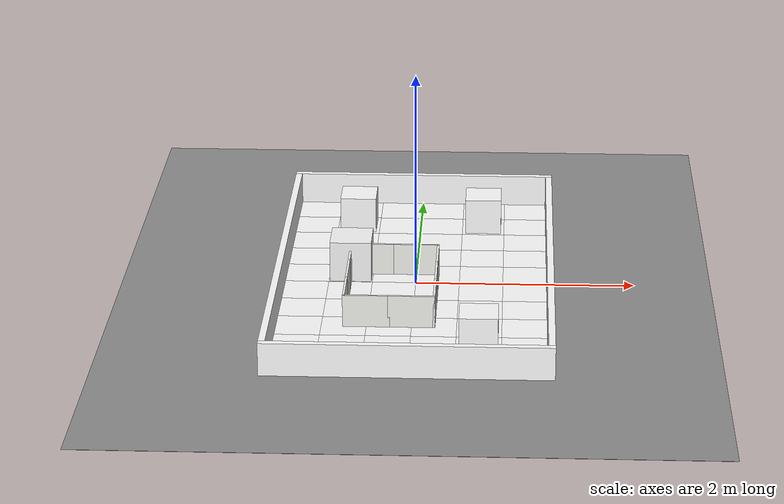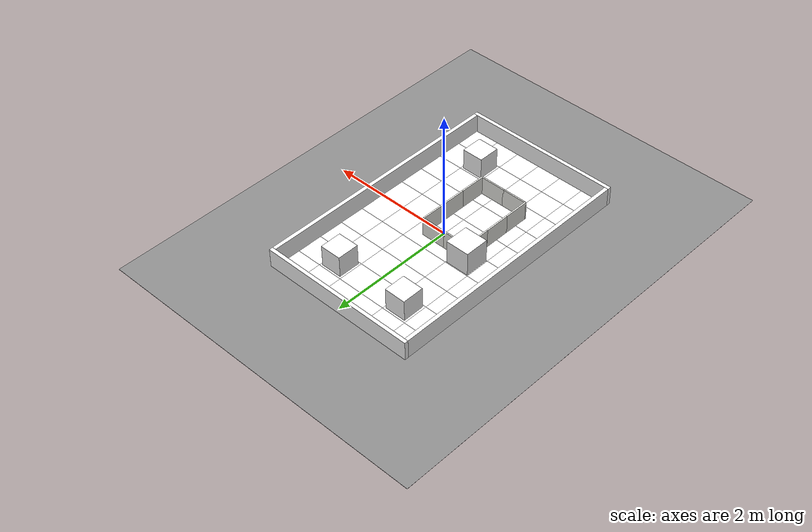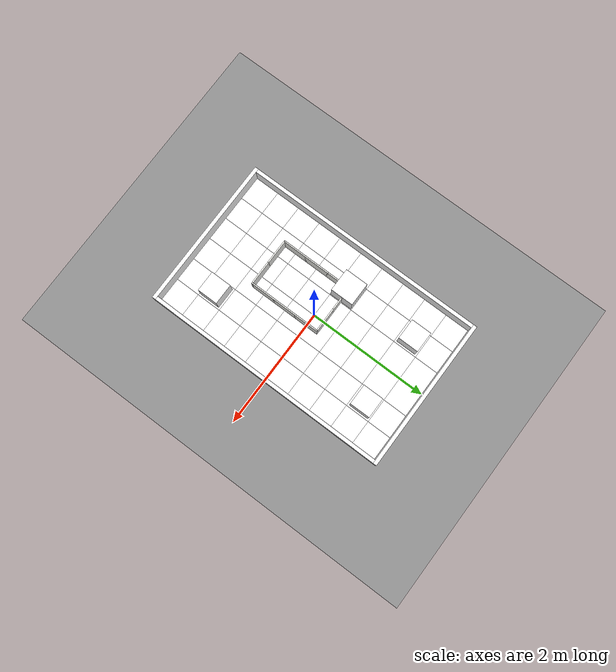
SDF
<?xml version="1.0" ?>
<!-- Generated by generate_grid_world.py from maps/udc_fig3.txt -->
<sdf version="1.9">
  <world name="default">
    <plugin filename="gz-sim-physics-system" name="gz::sim::systems::Physics"/>
    <plugin filename="gz-sim-user-commands-system" name="gz::sim::systems::UserCommands"/>
    <plugin filename="gz-sim-scene-broadcaster-system" name="gz::sim::systems::SceneBroadcaster"/>
    <plugin filename="gz-sim-sensors-system" name="gz::sim::systems::Sensors">
      <render_engine>ogre2</render_engine>
    </plugin>

    <scene>
      <ambient>0.6 0.6 0.6 1</ambient>
      <background>0.8 0.8 0.8 1</background>
      <grid>false</grid>
    </scene>

    <light type="directional" name="sun">
      <cast_shadows>false</cast_shadows>
      <pose>0 0 10 0 0 0</pose>
      <diffuse>0.9 0.9 0.9 1</diffuse>
      <specular>0.2 0.2 0.2 1</specular>
      <direction>-0.3 0.2 -1</direction>
    </light>

    <light type="directional" name="fill">
      <cast_shadows>false</cast_shadows>
      <pose>0 0 10 0 0 0</pose>
      <diffuse>0.45 0.45 0.45 1</diffuse>
      <specular>0 0 0 1</specular>
      <direction>0.6 -0.7 -0.5</direction>
    </light>

    <model name="grid_floor"><static>true</static><link name="link"><visual name="tile_0_0_visual"><pose>-1.0000 1.8000 0.0010 0 0 0</pose><geometry><box><size>0.4000 0.4000 0.0020</size></box></geometry><material><ambient>1 1 1 1</ambient><diffuse>1 1 1 1</diffuse><pbr><metal><albedo_map>model://grid_world_assets/materials/textures/wood_dark.png</albedo_map><roughness>0.85</roughness><metalness>0</metalness></metal></pbr></material></visual><visual name="tile_0_1_visual"><pose>-0.6000 1.8000 0.0010 0 0 0</pose><geometry><box><size>0.4000 0.4000 0.0020</size></box></geometry><material><ambient>1 1 1 1</ambient><diffuse>1 1 1 1</diffuse><pbr><metal><albedo_map>model://grid_world_assets/materials/textures/wood_light.png</albedo_map><roughness>0.85</roughness><metalness>0</metalness></metal></pbr></material></visual><visual name="tile_0_2_visual"><pose>-0.2000 1.8000 0.0010 0 0 0</pose><geometry><box><size>0.4000 0.4000 0.0020</size></box></geometry><material><ambient>1 1 1 1</ambient><diffuse>1 1 1 1</diffuse><pbr><metal><albedo_map>model://grid_world_assets/materials/textures/wood_dark.png</albedo_map><roughness>0.85</roughness><metalness>0</metalness></metal></pbr></material></visual><visual name="tile_0_3_visual"><pose>0.2000 1.8000 0.0010 0 0 0</pose><geometry><box><size>0.4000 0.4000 0.0020</size></box></geometry><material><ambient>1 1 1 1</ambient><diffuse>1 1 1 1</diffuse><pbr><metal><albedo_map>model://grid_world_assets/materials/textures/wood_light.png</albedo_map><roughness>0.85</roughness><metalness>0</metalness></metal></pbr></material></visual><visual name="tile_0_4_visual"><pose>0.6000 1.8000 0.0010 0 0 0</pose><geometry><box><size>0.4000 0.4000 0.0020</size></box></geometry><material><ambient>1 1 1 1</ambient><diffuse>1 1 1 1</diffuse><pbr><metal><albedo_map>model://grid_world_assets/materials/textures/wood_dark.png</albedo_map><roughness>0.85</roughness><metalness>0</metalness></metal></pbr></material></visual><visual name="tile_0_5_visual"><pose>1.0000 1.8000 0.0010 0 0 0</pose><geometry><box><size>0.4000 0.4000 0.0020</size></box></geometry><material><ambient>1 1 1 1</ambient><diffuse>1 1 1 1</diffuse><pbr><metal><albedo_map>model://grid_world_assets/materials/textures/wood_light.png</albedo_map><roughness>0.85</roughness><metalness>0</metalness></metal></pbr></material></visual><visual name="tile_1_0_visual"><pose>-1.0000 1.4000 0.0010 0 0 0</pose><geometry><box><size>0.4000 0.4000 0.0020</size></box></geometry><material><ambient>1 1 1 1</ambient><diffuse>1 1 1 1</diffuse><pbr><metal><albedo_map>model://grid_world_assets/materials/textures/wood_light.png</albedo_map><roughness>0.85</roughness><metalness>0</metalness></metal></pbr></material></visual><visual name="tile_1_1_visual"><pose>-0.6000 1.4000 0.0010 0 0 0</pose><geometry><box><size>0.4000 0.4000 0.0020</size></box></geometry><material><ambient>1 1 1 1</ambient><diffuse>1 1 1 1</diffuse><pbr><metal><albedo_map>model://grid_world_assets/materials/textures/wood_dark.png</albedo_map><roughness>0.85</roughness><metalness>0</metalness></metal></pbr></material></visual><visual name="tile_1_2_visual"><pose>-0.2000 1.4000 0.0010 0 0 0</pose><geometry><box><size>0.4000 0.4000 0.0020</size></box></geometry><material><ambient>1 1 1 1</ambient><diffuse>1 1 1 1</diffuse><pbr><metal><albedo_map>model://grid_world_assets/materials/textures/wood_light.png</albedo_map><roughness>0.85</roughness><metalness>0</metalness></metal></pbr></material></visual><visual name="tile_1_3_visual"><pose>0.2000 1.4000 0.0010 0 0 0</pose><geometry><box><size>0.4000 0.4000 0.0020</size></box></geometry><material><ambient>1 1 1 1</ambient><diffuse>1 1 1 1</diffuse><pbr><metal><albedo_map>model://grid_world_assets/materials/textures/wood_dark.png</albedo_map><roughness>0.85</roughness><metalness>0</metalness></metal></pbr></material></visual><visual name="tile_1_4_visual"><pose>0.6000 1.4000 0.0010 0 0 0</pose><geometry><box><size>0.4000 0.4000 0.0020</size></box></geometry><material><ambient>1 1 1 1</ambient><diffuse>1 1 1 1</diffuse><pbr><metal><albedo_map>model://grid_world_assets/materials/textures/wood_light.png</albedo_map><roughness>0.85</roughness><metalness>0</metalness></metal></pbr></material></visual><visual name="tile_1_5_visual"><pose>1.0000 1.4000 0.0010 0 0 0</pose><geometry><box><size>0.4000 0.4000 0.0020</size></box></geometry><material><ambient>1 1 1 1</ambient><diffuse>1 1 1 1</diffuse><pbr><metal><albedo_map>model://grid_world_assets/materials/textures/wood_dark.png</albedo_map><roughness>0.85</roughness><metalness>0</metalness></metal></pbr></material></visual><visual name="tile_2_0_visual"><pose>-1.0000 1.0000 0.0010 0 0 0</pose><geometry><box><size>0.4000 0.4000 0.0020</size></box></geometry><material><ambient>1 1 1 1</ambient><diffuse>1 1 1 1</diffuse><pbr><metal><albedo_map>model://grid_world_assets/materials/textures/wood_dark.png</albedo_map><roughness>0.85</roughness><metalness>0</metalness></metal></pbr></material></visual><visual name="tile_2_1_visual"><pose>-0.6000 1.0000 0.0010 0 0 0</pose><geometry><box><size>0.4000 0.4000 0.0020</size></box></geometry><material><ambient>1 1 1 1</ambient><diffuse>1 1 1 1</diffuse><pbr><metal><albedo_map>model://grid_world_assets/materials/textures/wood_light.png</albedo_map><roughness>0.85</roughness><metalness>0</metalness></metal></pbr></material></visual><visual name="tile_2_2_visual"><pose>-0.2000 1.0000 0.0010 0 0 0</pose><geometry><box><size>0.4000 0.4000 0.0020</size></box></geometry><material><ambient>1 1 1 1</ambient><diffuse>1 1 1 1</diffuse><pbr><metal><albedo_map>model://grid_world_assets/materials/textures/wood_dark.png</albedo_map><roughness>0.85</roughness><metalness>0</metalness></metal></pbr></material></visual><visual name="tile_2_3_visual"><pose>0.2000 1.0000 0.0010 0 0 0</pose><geometry><box><size>0.4000 0.4000 0.0020</size></box></geometry><material><ambient>1 1 1 1</ambient><diffuse>1 1 1 1</diffuse><pbr><metal><albedo_map>model://grid_world_assets/materials/textures/wood_light.png</albedo_map><roughness>0.85</roughness><metalness>0</metalness></metal></pbr></material></visual><visual name="tile_2_4_visual"><pose>0.6000 1.0000 0.0010 0 0 0</pose><geometry><box><size>0.4000 0.4000 0.0020</size></box></geometry><material><ambient>1 1 1 1</ambient><diffuse>1 1 1 1</diffuse><pbr><metal><albedo_map>model://grid_world_assets/materials/textures/wood_dark.png</albedo_map><roughness>0.85</roughness><metalness>0</metalness></metal></pbr></material></visual><visual name="tile_2_5_visual"><pose>1.0000 1.0000 0.0010 0 0 0</pose><geometry><box><size>0.4000 0.4000 0.0020</size></box></geometry><material><ambient>1 1 1 1</ambient><diffuse>1 1 1 1</diffuse><pbr><metal><albedo_map>model://grid_world_assets/materials/textures/wood_light.png</albedo_map><roughness>0.85</roughness><metalness>0</metalness></metal></pbr></material></visual><visual name="tile_3_0_visual"><pose>-1.0000 0.6000 0.0010 0 0 0</pose><geometry><box><size>0.4000 0.4000 0.0020</size></box></geometry><material><ambient>1 1 1 1</ambient><diffuse>1 1 1 1</diffuse><pbr><metal><albedo_map>model://grid_world_assets/materials/textures/wood_light.png</albedo_map><roughness>0.85</roughness><metalness>0</metalness></metal></pbr></material></visual><visual name="tile_3_1_visual"><pose>-0.6000 0.6000 0.0010 0 0 0</pose><geometry><box><size>0.4000 0.4000 0.0020</size></box></geometry><material><ambient>1 1 1 1</ambient><diffuse>1 1 1 1</diffuse><pbr><metal><albedo_map>model://grid_world_assets/materials/textures/wood_dark.png</albedo_map><roughness>0.85</roughness><metalness>0</metalness></metal></pbr></material></visual><visual name="tile_3_2_visual"><pose>-0.2000 0.6000 0.0010 0 0 0</pose><geometry><box><size>0.4000 0.4000 0.0020</size></box></geometry><material><ambient>1 1 1 1</ambient><diffuse>1 1 1 1</diffuse><pbr><metal><albedo_map>model://grid_world_assets/materials/textures/wood_light.png</albedo_map><roughness>0.85</roughness><metalness>0</metalness></metal></pbr></material></visual><visual name="tile_3_3_visual"><pose>0.2000 0.6000 0.0010 0 0 0</pose><geometry><box><size>0.4000 0.4000 0.0020</size></box></geometry><material><ambient>1 1 1 1</ambient><diffuse>1 1 1 1</diffuse><pbr><metal><albedo_map>model://grid_world_assets/materials/textures/wood_dark.png</albedo_map><roughness>0.85</roughness><metalness>0</metalness></metal></pbr></material></visual><visual name="tile_3_4_visual"><pose>0.6000 0.6000 0.0010 0 0 0</pose><geometry><box><size>0.4000 0.4000 0.0020</size></box></geometry><material><ambient>1 1 1 1</ambient><diffuse>1 1 1 1</diffuse><pbr><metal><albedo_map>model://grid_world_assets/materials/textures/wood_light.png</albedo_map><roughness>0.85</roughness><metalness>0</metalness></metal></pbr></material></visual><visual name="tile_3_5_visual"><pose>1.0000 0.6000 0.0010 0 0 0</pose><geometry><box><size>0.4000 0.4000 0.0020</size></box></geometry><material><ambient>1 1 1 1</ambient><diffuse>1 1 1 1</diffuse><pbr><metal><albedo_map>model://grid_world_assets/materials/textures/wood_dark.png</albedo_map><roughness>0.85</roughness><metalness>0</metalness></metal></pbr></material></visual><visual name="tile_4_0_visual"><pose>-1.0000 0.2000 0.0010 0 0 0</pose><geometry><box><size>0.4000 0.4000 0.0020</size></box></geometry><material><ambient>1 1 1 1</ambient><diffuse>1 1 1 1</diffuse><pbr><metal><albedo_map>model://grid_world_assets/materials/textures/wood_dark.png</albedo_map><roughness>0.85</roughness><metalness>0</metalness></metal></pbr></material></visual><visual name="tile_4_1_visual"><pose>-0.6000 0.2000 0.0010 0 0 0</pose><geometry><box><size>0.4000 0.4000 0.0020</size></box></geometry><material><ambient>1 1 1 1</ambient><diffuse>1 1 1 1</diffuse><pbr><metal><albedo_map>model://grid_world_assets/materials/textures/wood_light.png</albedo_map><roughness>0.85</roughness><metalness>0</metalness></metal></pbr></material></visual><visual name="tile_4_2_visual"><pose>-0.2000 0.2000 0.0010 0 0 0</pose><geometry><box><size>0.4000 0.4000 0.0020</size></box></geometry><material><ambient>1 1 1 1</ambient><diffuse>1 1 1 1</diffuse><pbr><metal><albedo_map>model://grid_world_assets/materials/textures/wood_dark.png</albedo_map><roughness>0.85</roughness><metalness>0</metalness></metal></pbr></material></visual><visual name="tile_4_3_visual"><pose>0.2000 0.2000 0.0010 0 0 0</pose><geometry><box><size>0.4000 0.4000 0.0020</size></box></geometry><material><ambient>1 1 1 1</ambient><diffuse>1 1 1 1</diffuse><pbr><metal><albedo_map>model://grid_world_assets/materials/textures/wood_light.png</albedo_map><roughness>0.85</roughness><metalness>0</metalness></metal></pbr></material></visual><visual name="tile_4_4_visual"><pose>0.6000 0.2000 0.0010 0 0 0</pose><geometry><box><size>0.4000 0.4000 0.0020</size></box></geometry><material><ambient>1 1 1 1</ambient><diffuse>1 1 1 1</diffuse><pbr><metal><albedo_map>model://grid_world_assets/materials/textures/wood_dark.png</albedo_map><roughness>0.85</roughness><metalness>0</metalness></metal></pbr></material></visual><visual name="tile_4_5_visual"><pose>1.0000 0.2000 0.0010 0 0 0</pose><geometry><box><size>0.4000 0.4000 0.0020</size></box></geometry><material><ambient>1 1 1 1</ambient><diffuse>1 1 1 1</diffuse><pbr><metal><albedo_map>model://grid_world_assets/materials/textures/wood_light.png</albedo_map><roughness>0.85</roughness><metalness>0</metalness></metal></pbr></material></visual><visual name="tile_5_0_visual"><pose>-1.0000 -0.2000 0.0010 0 0 0</pose><geometry><box><size>0.4000 0.4000 0.0020</size></box></geometry><material><ambient>1 1 1 1</ambient><diffuse>1 1 1 1</diffuse><pbr><metal><albedo_map>model://grid_world_assets/materials/textures/wood_light.png</albedo_map><roughness>0.85</roughness><metalness>0</metalness></metal></pbr></material></visual><visual name="tile_5_1_visual"><pose>-0.6000 -0.2000 0.0010 0 0 0</pose><geometry><box><size>0.4000 0.4000 0.0020</size></box></geometry><material><ambient>1 1 1 1</ambient><diffuse>1 1 1 1</diffuse><pbr><metal><albedo_map>model://grid_world_assets/materials/textures/wood_dark.png</albedo_map><roughness>0.85</roughness><metalness>0</metalness></metal></pbr></material></visual><visual name="tile_5_2_visual"><pose>-0.2000 -0.2000 0.0010 0 0 0</pose><geometry><box><size>0.4000 0.4000 0.0020</size></box></geometry><material><ambient>1 1 1 1</ambient><diffuse>1 1 1 1</diffuse><pbr><metal><albedo_map>model://grid_world_assets/materials/textures/wood_light.png</albedo_map><roughness>0.85</roughness><metalness>0</metalness></metal></pbr></material></visual><visual name="tile_5_3_visual"><pose>0.2000 -0.2000 0.0010 0 0 0</pose><geometry><box><size>0.4000 0.4000 0.0020</size></box></geometry><material><ambient>1 1 1 1</ambient><diffuse>1 1 1 1</diffuse><pbr><metal><albedo_map>model://grid_world_assets/materials/textures/wood_dark.png</albedo_map><roughness>0.85</roughness><metalness>0</metalness></metal></pbr></material></visual><visual name="tile_5_4_visual"><pose>0.6000 -0.2000 0.0010 0 0 0</pose><geometry><box><size>0.4000 0.4000 0.0020</size></box></geometry><material><ambient>1 1 1 1</ambient><diffuse>1 1 1 1</diffuse><pbr><metal><albedo_map>model://grid_world_assets/materials/textures/wood_light.png</albedo_map><roughness>0.85</roughness><metalness>0</metalness></metal></pbr></material></visual><visual name="tile_5_5_visual"><pose>1.0000 -0.2000 0.0010 0 0 0</pose><geometry><box><size>0.4000 0.4000 0.0020</size></box></geometry><material><ambient>1 1 1 1</ambient><diffuse>1 1 1 1</diffuse><pbr><metal><albedo_map>model://grid_world_assets/materials/textures/wood_dark.png</albedo_map><roughness>0.85</roughness><metalness>0</metalness></metal></pbr></material></visual><visual name="tile_6_0_visual"><pose>-1.0000 -0.6000 0.0010 0 0 0</pose><geometry><box><size>0.4000 0.4000 0.0020</size></box></geometry><material><ambient>1 1 1 1</ambient><diffuse>1 1 1 1</diffuse><pbr><metal><albedo_map>model://grid_world_assets/materials/textures/wood_dark.png</albedo_map><roughness>0.85</roughness><metalness>0</metalness></metal></pbr></material></visual><visual name="tile_6_1_visual"><pose>-0.6000 -0.6000 0.0010 0 0 0</pose><geometry><box><size>0.4000 0.4000 0.0020</size></box></geometry><material><ambient>1 1 1 1</ambient><diffuse>1 1 1 1</diffuse><pbr><metal><albedo_map>model://grid_world_assets/materials/textures/wood_light.png</albedo_map><roughness>0.85</roughness><metalness>0</metalness></metal></pbr></material></visual><visual name="tile_6_2_visual"><pose>-0.2000 -0.6000 0.0010 0 0 0</pose><geometry><box><size>0.4000 0.4000 0.0020</size></box></geometry><material><ambient>1 1 1 1</ambient><diffuse>1 1 1 1</diffuse><pbr><metal><albedo_map>model://grid_world_assets/materials/textures/wood_dark.png</albedo_map><roughness>0.85</roughness><metalness>0</metalness></metal></pbr></material></visual><visual name="tile_6_3_visual"><pose>0.2000 -0.6000 0.0010 0 0 0</pose><geometry><box><size>0.4000 0.4000 0.0020</size></box></geometry><material><ambient>1 1 1 1</ambient><diffuse>1 1 1 1</diffuse><pbr><metal><albedo_map>model://grid_world_assets/materials/textures/wood_light.png</albedo_map><roughness>0.85</roughness><metalness>0</metalness></metal></pbr></material></visual><visual name="tile_6_4_visual"><pose>0.6000 -0.6000 0.0010 0 0 0</pose><geometry><box><size>0.4000 0.4000 0.0020</size></box></geometry><material><ambient>1 1 1 1</ambient><diffuse>1 1 1 1</diffuse><pbr><metal><albedo_map>model://grid_world_assets/materials/textures/wood_dark.png</albedo_map><roughness>0.85</roughness><metalness>0</metalness></metal></pbr></material></visual><visual name="tile_6_5_visual"><pose>1.0000 -0.6000 0.0010 0 0 0</pose><geometry><box><size>0.4000 0.4000 0.0020</size></box></geometry><material><ambient>1 1 1 1</ambient><diffuse>1 1 1 1</diffuse><pbr><metal><albedo_map>model://grid_world_assets/materials/textures/wood_light.png</albedo_map><roughness>0.85</roughness><metalness>0</metalness></metal></pbr></material></visual><visual name="tile_7_0_visual"><pose>-1.0000 -1.0000 0.0010 0 0 0</pose><geometry><box><size>0.4000 0.4000 0.0020</size></box></geometry><material><ambient>1 1 1 1</ambient><diffuse>1 1 1 1</diffuse><pbr><metal><albedo_map>model://grid_world_assets/materials/textures/wood_light.png</albedo_map><roughness>0.85</roughness><metalness>0</metalness></metal></pbr></material></visual><visual name="tile_7_1_visual"><pose>-0.6000 -1.0000 0.0010 0 0 0</pose><geometry><box><size>0.4000 0.4000 0.0020</size></box></geometry><material><ambient>1 1 1 1</ambient><diffuse>1 1 1 1</diffuse><pbr><metal><albedo_map>model://grid_world_assets/materials/textures/wood_dark.png</albedo_map><roughness>0.85</roughness><metalness>0</metalness></metal></pbr></material></visual><visual name="tile_7_2_visual"><pose>-0.2000 -1.0000 0.0010 0 0 0</pose><geometry><box><size>0.4000 0.4000 0.0020</size></box></geometry><material><ambient>1 1 1 1</ambient><diffuse>1 1 1 1</diffuse><pbr><metal><albedo_map>model://grid_world_assets/materials/textures/wood_light.png</albedo_map><roughness>0.85</roughness><metalness>0</metalness></metal></pbr></material></visual><visual name="tile_7_3_visual"><pose>0.2000 -1.0000 0.0010 0 0 0</pose><geometry><box><size>0.4000 0.4000 0.0020</size></box></geometry><material><ambient>1 1 1 1</ambient><diffuse>1 1 1 1</diffuse><pbr><metal><albedo_map>model://grid_world_assets/materials/textures/wood_dark.png</albedo_map><roughness>0.85</roughness><metalness>0</metalness></metal></pbr></material></visual><visual name="tile_7_4_visual"><pose>0.6000 -1.0000 0.0010 0 0 0</pose><geometry><box><size>0.4000 0.4000 0.0020</size></box></geometry><material><ambient>1 1 1 1</ambient><diffuse>1 1 1 1</diffuse><pbr><metal><albedo_map>model://grid_world_assets/materials/textures/wood_light.png</albedo_map><roughness>0.85</roughness><metalness>0</metalness></metal></pbr></material></visual><visual name="tile_7_5_visual"><pose>1.0000 -1.0000 0.0010 0 0 0</pose><geometry><box><size>0.4000 0.4000 0.0020</size></box></geometry><material><ambient>1 1 1 1</ambient><diffuse>1 1 1 1</diffuse><pbr><metal><albedo_map>model://grid_world_assets/materials/textures/wood_dark.png</albedo_map><roughness>0.85</roughness><metalness>0</metalness></metal></pbr></material></visual><visual name="tile_8_0_visual"><pose>-1.0000 -1.4000 0.0010 0 0 0</pose><geometry><box><size>0.4000 0.4000 0.0020</size></box></geometry><material><ambient>1 1 1 1</ambient><diffuse>1 1 1 1</diffuse><pbr><metal><albedo_map>model://grid_world_assets/materials/textures/wood_dark.png</albedo_map><roughness>0.85</roughness><metalness>0</metalness></metal></pbr></material></visual><visual name="tile_8_1_visual"><pose>-0.6000 -1.4000 0.0010 0 0 0</pose><geometry><box><size>0.4000 0.4000 0.0020</size></box></geometry><material><ambient>1 1 1 1</ambient><diffuse>1 1 1 1</diffuse><pbr><metal><albedo_map>model://grid_world_assets/materials/textures/wood_light.png</albedo_map><roughness>0.85</roughness><metalness>0</metalness></metal></pbr></material></visual><visual name="tile_8_2_visual"><pose>-0.2000 -1.4000 0.0010 0 0 0</pose><geometry><box><size>0.4000 0.4000 0.0020</size></box></geometry><material><ambient>1 1 1 1</ambient><diffuse>1 1 1 1</diffuse><pbr><metal><albedo_map>model://grid_world_assets/materials/textures/wood_dark.png</albedo_map><roughness>0.85</roughness><metalness>0</metalness></metal></pbr></material></visual><visual name="tile_8_3_visual"><pose>0.2000 -1.4000 0.0010 0 0 0</pose><geometry><box><size>0.4000 0.4000 0.0020</size></box></geometry><material><ambient>1 1 1 1</ambient><diffuse>1 1 1 1</diffuse><pbr><metal><albedo_map>model://grid_world_assets/materials/textures/wood_light.png</albedo_map><roughness>0.85</roughness><metalness>0</metalness></metal></pbr></material></visual><visual name="tile_8_4_visual"><pose>0.6000 -1.4000 0.0010 0 0 0</pose><geometry><box><size>0.4000 0.4000 0.0020</size></box></geometry><material><ambient>1 1 1 1</ambient><diffuse>1 1 1 1</diffuse><pbr><metal><albedo_map>model://grid_world_assets/materials/textures/wood_dark.png</albedo_map><roughness>0.85</roughness><metalness>0</metalness></metal></pbr></material></visual><visual name="tile_8_5_visual"><pose>1.0000 -1.4000 0.0010 0 0 0</pose><geometry><box><size>0.4000 0.4000 0.0020</size></box></geometry><material><ambient>1 1 1 1</ambient><diffuse>1 1 1 1</diffuse><pbr><metal><albedo_map>model://grid_world_assets/materials/textures/wood_light.png</albedo_map><roughness>0.85</roughness><metalness>0</metalness></metal></pbr></material></visual><visual name="tile_9_0_visual"><pose>-1.0000 -1.8000 0.0010 0 0 0</pose><geometry><box><size>0.4000 0.4000 0.0020</size></box></geometry><material><ambient>1 1 1 1</ambient><diffuse>1 1 1 1</diffuse><pbr><metal><albedo_map>model://grid_world_assets/materials/textures/wood_light.png</albedo_map><roughness>0.85</roughness><metalness>0</metalness></metal></pbr></material></visual><visual name="tile_9_1_visual"><pose>-0.6000 -1.8000 0.0010 0 0 0</pose><geometry><box><size>0.4000 0.4000 0.0020</size></box></geometry><material><ambient>1 1 1 1</ambient><diffuse>1 1 1 1</diffuse><pbr><metal><albedo_map>model://grid_world_assets/materials/textures/wood_dark.png</albedo_map><roughness>0.85</roughness><metalness>0</metalness></metal></pbr></material></visual><visual name="tile_9_2_visual"><pose>-0.2000 -1.8000 0.0010 0 0 0</pose><geometry><box><size>0.4000 0.4000 0.0020</size></box></geometry><material><ambient>1 1 1 1</ambient><diffuse>1 1 1 1</diffuse><pbr><metal><albedo_map>model://grid_world_assets/materials/textures/wood_light.png</albedo_map><roughness>0.85</roughness><metalness>0</metalness></metal></pbr></material></visual><visual name="tile_9_3_visual"><pose>0.2000 -1.8000 0.0010 0 0 0</pose><geometry><box><size>0.4000 0.4000 0.0020</size></box></geometry><material><ambient>1 1 1 1</ambient><diffuse>1 1 1 1</diffuse><pbr><metal><albedo_map>model://grid_world_assets/materials/textures/wood_dark.png</albedo_map><roughness>0.85</roughness><metalness>0</metalness></metal></pbr></material></visual><visual name="tile_9_4_visual"><pose>0.6000 -1.8000 0.0010 0 0 0</pose><geometry><box><size>0.4000 0.4000 0.0020</size></box></geometry><material><ambient>1 1 1 1</ambient><diffuse>1 1 1 1</diffuse><pbr><metal><albedo_map>model://grid_world_assets/materials/textures/wood_light.png</albedo_map><roughness>0.85</roughness><metalness>0</metalness></metal></pbr></material></visual><visual name="tile_9_5_visual"><pose>1.0000 -1.8000 0.0010 0 0 0</pose><geometry><box><size>0.4000 0.4000 0.0020</size></box></geometry><material><ambient>1 1 1 1</ambient><diffuse>1 1 1 1</diffuse><pbr><metal><albedo_map>model://grid_world_assets/materials/textures/wood_dark.png</albedo_map><roughness>0.85</roughness><metalness>0</metalness></metal></pbr></material></visual><visual name="outer_floor_visual"><pose>0.0000 0.0000 -0.0010 0 0 0</pose><geometry><box><size>5.4000 7.0000 0.0020</size></box></geometry><material><ambient>0.55 0.55 0.55 1</ambient><diffuse>0.55 0.55 0.55 1</diffuse><specular>0.1 0.1 0.1 1</specular></material></visual><collision name="ground"><geometry><plane><normal>0 0 1</normal><size>50 50</size></plane></geometry></collision></link></model>
    <model name="grid_border"><static>true</static><link name="link"><visual name="north_visual"><pose>0.0000 2.0300 0.1500 0 0 0</pose><geometry><box><size>2.5200 0.0600 0.3000</size></box></geometry><material><ambient>1 1 1 1</ambient><diffuse>1 1 1 1</diffuse><pbr><metal><albedo_map>model://grid_world_assets/materials/textures/wood_frame.png</albedo_map><roughness>0.85</roughness><metalness>0</metalness></metal></pbr></material></visual><collision name="north_collision"><pose>0.0000 2.0300 0.1500 0 0 0</pose><geometry><box><size>2.5200 0.0600 0.3000</size></box></geometry></collision><visual name="south_visual"><pose>0.0000 -2.0300 0.1500 0 0 0</pose><geometry><box><size>2.5200 0.0600 0.3000</size></box></geometry><material><ambient>1 1 1 1</ambient><diffuse>1 1 1 1</diffuse><pbr><metal><albedo_map>model://grid_world_assets/materials/textures/wood_frame.png</albedo_map><roughness>0.85</roughness><metalness>0</metalness></metal></pbr></material></visual><collision name="south_collision"><pose>0.0000 -2.0300 0.1500 0 0 0</pose><geometry><box><size>2.5200 0.0600 0.3000</size></box></geometry></collision><visual name="east_visual"><pose>1.2300 0.0000 0.1500 0 0 0</pose><geometry><box><size>0.0600 4.0000 0.3000</size></box></geometry><material><ambient>1 1 1 1</ambient><diffuse>1 1 1 1</diffuse><pbr><metal><albedo_map>model://grid_world_assets/materials/textures/wood_frame.png</albedo_map><roughness>0.85</roughness><metalness>0</metalness></metal></pbr></material></visual><collision name="east_collision"><pose>1.2300 0.0000 0.1500 0 0 0</pose><geometry><box><size>0.0600 4.0000 0.3000</size></box></geometry></collision><visual name="west_visual"><pose>-1.2300 0.0000 0.1500 0 0 0</pose><geometry><box><size>0.0600 4.0000 0.3000</size></box></geometry><material><ambient>1 1 1 1</ambient><diffuse>1 1 1 1</diffuse><pbr><metal><albedo_map>model://grid_world_assets/materials/textures/wood_frame.png</albedo_map><roughness>0.85</roughness><metalness>0</metalness></metal></pbr></material></visual><collision name="west_collision"><pose>-1.2300 0.0000 0.1500 0 0 0</pose><geometry><box><size>0.0600 4.0000 0.3000</size></box></geometry></collision></link></model>
    <model name="box_1_1"><static>true</static><pose>-0.6000 1.4000 0 0 0 0</pose><link name="link"><visual name="box_visual"><pose>0.0000 0.0000 0.1700 0 0 0</pose><geometry><box><size>0.3400 0.3400 0.3400</size></box></geometry><material><ambient>1 1 1 1</ambient><diffuse>1 1 1 1</diffuse><pbr><metal><albedo_map>model://grid_world_assets/materials/textures/cardboard.png</albedo_map><roughness>0.85</roughness><metalness>0</metalness></metal></pbr></material></visual><collision name="box_collision"><pose>0.0000 0.0000 0.1700 0 0 0</pose><geometry><box><size>0.3400 0.3400 0.3400</size></box></geometry></collision></link></model><model name="box_1_4"><static>true</static><pose>0.6000 1.4000 0 0 0 0</pose><link name="link"><visual name="box_visual"><pose>0.0000 0.0000 0.1700 0 0 0</pose><geometry><box><size>0.3400 0.3400 0.3400</size></box></geometry><material><ambient>1 1 1 1</ambient><diffuse>1 1 1 1</diffuse><pbr><metal><albedo_map>model://grid_world_assets/materials/textures/cardboard.png</albedo_map><roughness>0.85</roughness><metalness>0</metalness></metal></pbr></material></visual><collision name="box_collision"><pose>0.0000 0.0000 0.1700 0 0 0</pose><geometry><box><size>0.3400 0.3400 0.3400</size></box></geometry></collision></link></model><model name="block_4_1"><static>true</static><pose>-0.6000 0.2000 0 0 0 0</pose><link name="link"><visual name="block_visual"><pose>0.0000 0.0000 0.1900 0 0 0</pose><geometry><box><size>0.3800 0.3800 0.3800</size></box></geometry><material><ambient>0.97 0.97 0.97 1</ambient><diffuse>0.97 0.97 0.97 1</diffuse><specular>0.1 0.1 0.1 1</specular></material></visual><collision name="block_collision"><pose>0.0000 0.0000 0.1900 0 0 0</pose><geometry><box><size>0.3800 0.3800 0.3800</size></box></geometry></collision></link></model><model name="box_8_4"><static>true</static><pose>0.6000 -1.4000 0 0 0 0</pose><link name="link"><visual name="box_visual"><pose>0.0000 0.0000 0.1700 0 0 0</pose><geometry><box><size>0.3400 0.3400 0.3400</size></box></geometry><material><ambient>1 1 1 1</ambient><diffuse>1 1 1 1</diffuse><pbr><metal><albedo_map>model://grid_world_assets/materials/textures/cardboard.png</albedo_map><roughness>0.85</roughness><metalness>0</metalness></metal></pbr></material></visual><collision name="box_collision"><pose>0.0000 0.0000 0.1700 0 0 0</pose><geometry><box><size>0.3400 0.3400 0.3400</size></box></geometry></collision></link></model>
    <model name="thin_walls"><static>true</static><link name="link"><visual name="wall_4_2_0_1_visual"><pose>0.0000 0.2000 0.1500 0 0 0</pose><geometry><box><size>0.4200 0.0200 0.3000</size></box></geometry><material><ambient>0.95 0.95 0.93 1</ambient><diffuse>0.95 0.95 0.93 1</diffuse><specular>0.1 0.1 0.1 1</specular></material></visual><collision name="wall_4_2_0_1_collision"><pose>0.0000 0.2000 0.1500 0 0 0</pose><geometry><box><size>0.4200 0.0200 0.3000</size></box></geometry></collision><visual name="wall_4_2_0_-1_visual"><pose>-0.4000 0.2000 0.1500 0 0 0</pose><geometry><box><size>0.4200 0.0200 0.3000</size></box></geometry><material><ambient>0.95 0.95 0.93 1</ambient><diffuse>0.95 0.95 0.93 1</diffuse><specular>0.1 0.1 0.1 1</specular></material></visual><collision name="wall_4_2_0_-1_collision"><pose>-0.4000 0.2000 0.1500 0 0 0</pose><geometry><box><size>0.4200 0.0200 0.3000</size></box></geometry></collision><visual name="wall_4_3_1_0_visual"><pose>0.2000 0.0000 0.1500 0 0 0</pose><geometry><box><size>0.0200 0.4200 0.3000</size></box></geometry><material><ambient>0.95 0.95 0.93 1</ambient><diffuse>0.95 0.95 0.93 1</diffuse><specular>0.1 0.1 0.1 1</specular></material></visual><collision name="wall_4_3_1_0_collision"><pose>0.2000 0.0000 0.1500 0 0 0</pose><geometry><box><size>0.0200 0.4200 0.3000</size></box></geometry></collision><visual name="wall_5_1_1_0_visual"><pose>-0.6000 -0.4000 0.1500 0 0 0</pose><geometry><box><size>0.0200 0.4200 0.3000</size></box></geometry><material><ambient>0.95 0.95 0.93 1</ambient><diffuse>0.95 0.95 0.93 1</diffuse><specular>0.1 0.1 0.1 1</specular></material></visual><collision name="wall_5_1_1_0_collision"><pose>-0.6000 -0.4000 0.1500 0 0 0</pose><geometry><box><size>0.0200 0.4200 0.3000</size></box></geometry></collision><visual name="wall_5_1_-1_0_visual"><pose>-0.6000 0.0000 0.1500 0 0 0</pose><geometry><box><size>0.0200 0.4200 0.3000</size></box></geometry><material><ambient>0.95 0.95 0.93 1</ambient><diffuse>0.95 0.95 0.93 1</diffuse><specular>0.1 0.1 0.1 1</specular></material></visual><collision name="wall_5_1_-1_0_collision"><pose>-0.6000 0.0000 0.1500 0 0 0</pose><geometry><box><size>0.0200 0.4200 0.3000</size></box></geometry></collision><visual name="wall_5_3_1_0_visual"><pose>0.2000 -0.4000 0.1500 0 0 0</pose><geometry><box><size>0.0200 0.4200 0.3000</size></box></geometry><material><ambient>0.95 0.95 0.93 1</ambient><diffuse>0.95 0.95 0.93 1</diffuse><specular>0.1 0.1 0.1 1</specular></material></visual><collision name="wall_5_3_1_0_collision"><pose>0.2000 -0.4000 0.1500 0 0 0</pose><geometry><box><size>0.0200 0.4200 0.3000</size></box></geometry></collision><visual name="wall_6_1_1_0_visual"><pose>-0.6000 -0.8000 0.1500 0 0 0</pose><geometry><box><size>0.0200 0.4200 0.3000</size></box></geometry><material><ambient>0.95 0.95 0.93 1</ambient><diffuse>0.95 0.95 0.93 1</diffuse><specular>0.1 0.1 0.1 1</specular></material></visual><collision name="wall_6_1_1_0_collision"><pose>-0.6000 -0.8000 0.1500 0 0 0</pose><geometry><box><size>0.0200 0.4200 0.3000</size></box></geometry></collision><visual name="wall_6_3_1_0_visual"><pose>0.2000 -0.8000 0.1500 0 0 0</pose><geometry><box><size>0.0200 0.4200 0.3000</size></box></geometry><material><ambient>0.95 0.95 0.93 1</ambient><diffuse>0.95 0.95 0.93 1</diffuse><specular>0.1 0.1 0.1 1</specular></material></visual><collision name="wall_6_3_1_0_collision"><pose>0.2000 -0.8000 0.1500 0 0 0</pose><geometry><box><size>0.0200 0.4200 0.3000</size></box></geometry></collision><visual name="wall_7_1_0_1_visual"><pose>-0.4000 -1.0000 0.1500 0 0 0</pose><geometry><box><size>0.4200 0.0200 0.3000</size></box></geometry><material><ambient>0.95 0.95 0.93 1</ambient><diffuse>0.95 0.95 0.93 1</diffuse><specular>0.1 0.1 0.1 1</specular></material></visual><collision name="wall_7_1_0_1_collision"><pose>-0.4000 -1.0000 0.1500 0 0 0</pose><geometry><box><size>0.4200 0.0200 0.3000</size></box></geometry></collision><visual name="wall_7_2_0_1_visual"><pose>0.0000 -1.0000 0.1500 0 0 0</pose><geometry><box><size>0.4200 0.0200 0.3000</size></box></geometry><material><ambient>0.95 0.95 0.93 1</ambient><diffuse>0.95 0.95 0.93 1</diffuse><specular>0.1 0.1 0.1 1</specular></material></visual><collision name="wall_7_2_0_1_collision"><pose>0.0000 -1.0000 0.1500 0 0 0</pose><geometry><box><size>0.4200 0.0200 0.3000</size></box></geometry></collision></link></model>
  </world>
</sdf>
